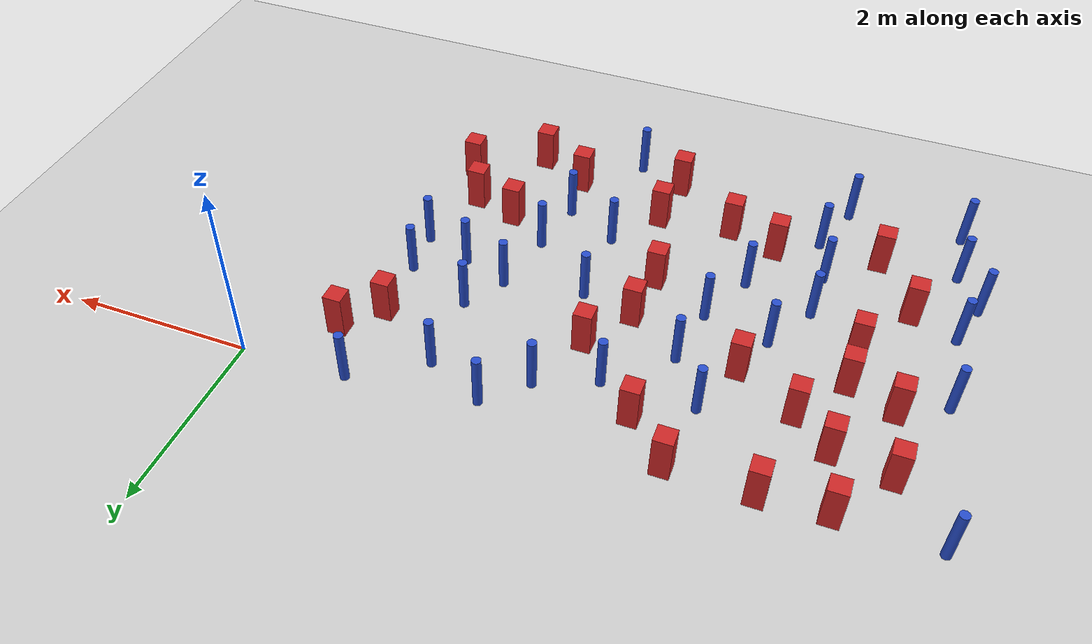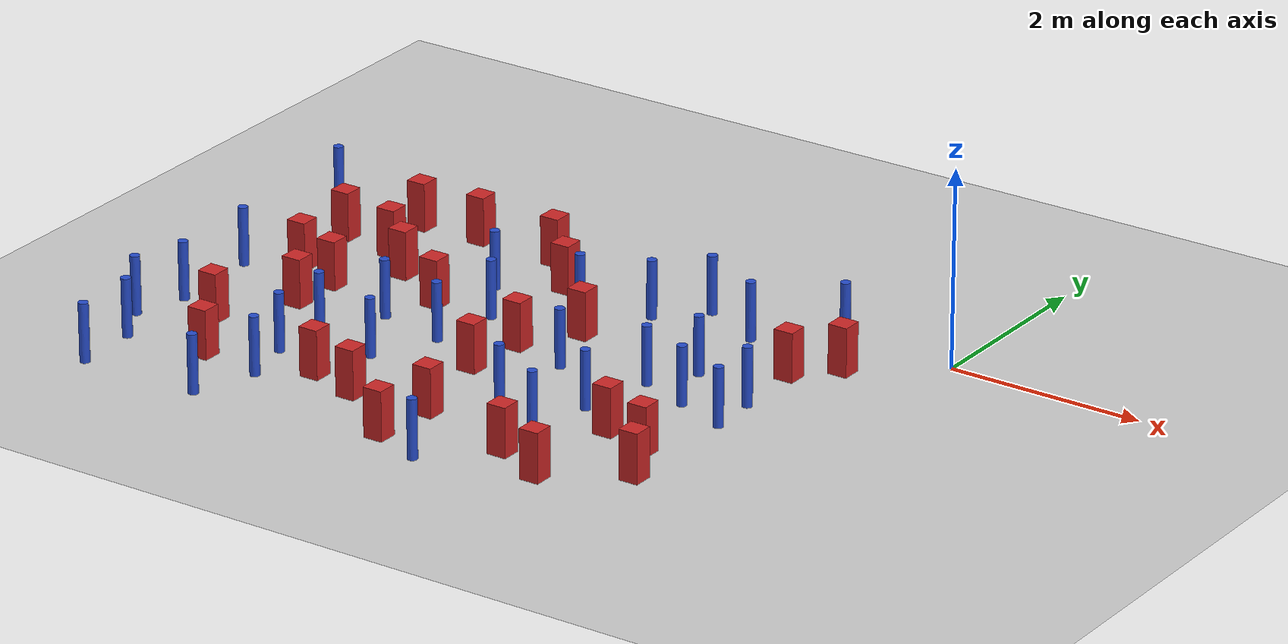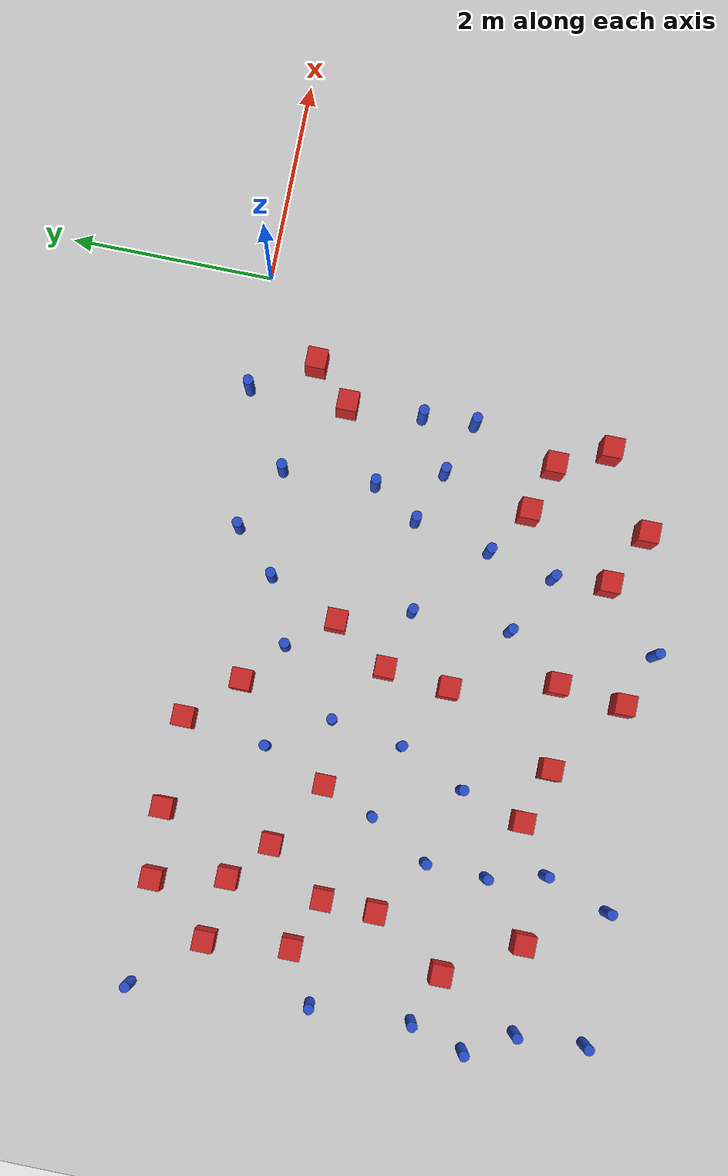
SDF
<sdf version="1.6">
 <world name="default">
  <model name="ground_plane">
   <static>1</static>
   <link name="link">
    <collision name="collision">
     <geometry><plane><normal>0 0 1</normal><size>100 100</size></plane></geometry>
     <surface><friction><ode><mu>100</mu><mu2>50</mu2></ode></friction></surface>
    </collision>
    <visual name="visual">
     <cast_shadows>0</cast_shadows>
     <geometry><plane><normal>0 0 1</normal><size>100 100</size></plane></geometry>
     <material>
      <ambient>1.0 1.0 1.0 1.0</ambient>
      <diffuse>0.8 0.8 0.8 1.0</diffuse>
      <specular>0.01 0.01 0.01 1.000000</specular>
     </material>
    </visual>
   </link>
  </model>
  <model name="pole_obstacle3">
   <static>true</static>
   <pose>-5.21165432251 -3.73537598972 2.88873142074e-08 -9.90536690245e-09 4.6021994898e-07 -1.20965994966e-07</pose>
   <link name="link">
    <pose>0 0 0.3 0 -0 0</pose>
    <inertial>
     <mass>1</mass>
     <inertia><ixx>0.145833</ixx><ixy>0</ixy><ixz>0</ixz><iyy>0.145833</iyy><iyz>0</iyz><izz>0.125</izz></inertia>
    </inertial>
    <collision name="collision">
     <geometry><cylinder><radius>0.05</radius><length>.6</length></cylinder></geometry>
    </collision>
    <visual name="visual">
     <geometry><cylinder><radius>0.05</radius><length>.6</length></cylinder></geometry>
     <material>
      <script><name>Gazebo/Blue</name><uri>file://media/materials/scripts/gazebo.material</uri></script>
     </material>
    </visual>
   </link>
  </model>
  <model name="square_post_obstacle5">
   <static>true</static>
   <pose>-6.42843077211 -0.685245272098 8.22691968438e-08 7.2212513382e-06 -7.54495500217e-07 2.29674213826e-05</pose>
   <link name="link">
    <pose>0 0 0.25 0 -0 0</pose>
    <inertial>
     <mass>100</mass>
     <inertia>
      <ixx>0.166667</ixx>
      <ixy>0</ixy>
      <ixz>0</ixz>
      <iyy>0.166667</iyy>
      <iyz>0</iyz>
      <izz>0.166667</izz>
     </inertia>
    </inertial>
    <collision name="collision"><geometry><box><size>.2 .2 .5</size></box></geometry></collision>
    <visual name="visual">
     <geometry><box><size>.2 .2 .5</size></box></geometry>
     <material>
      <script><name>Gazebo/Red</name><uri>file://media/materials/scripts/gazebo.material</uri></script>
     </material>
    </visual>
   </link>
  </model>
  <model name="square_post_obstacle11">
   <static>true</static>
   <pose>-4.78634820222 -1.50564330766 8.22691968438e-08 7.2212513382e-06 -7.54495500217e-07 2.29674213826e-05</pose>
   <link name="link">
    <pose>0 0 0.25 0 -0 0</pose>
    <inertial>
     <mass>100</mass>
     <inertia>
      <ixx>0.166667</ixx>
      <ixy>0</ixy>
      <ixz>0</ixz>
      <iyy>0.166667</iyy>
      <iyz>0</iyz>
      <izz>0.166667</izz>
     </inertia>
    </inertial>
    <collision name="collision"><geometry><box><size>.2 .2 .5</size></box></geometry></collision>
    <visual name="visual">
     <geometry><box><size>.2 .2 .5</size></box></geometry>
     <material>
      <script><name>Gazebo/Red</name><uri>file://media/materials/scripts/gazebo.material</uri></script>
     </material>
    </visual>
   </link>
  </model>
  <model name="pole_obstacle9">
   <static>true</static>
   <pose>-5.34426022218 -3.18087309578 2.88873142074e-08 -9.90536690245e-09 4.6021994898e-07 -1.20965994966e-07</pose>
   <link name="link">
    <pose>0 0 0.3 0 -0 0</pose>
    <inertial>
     <mass>1</mass>
     <inertia><ixx>0.145833</ixx><ixy>0</ixy><ixz>0</ixz><iyy>0.145833</iyy><iyz>0</iyz><izz>0.125</izz></inertia>
    </inertial>
    <collision name="collision">
     <geometry><cylinder><radius>0.05</radius><length>.6</length></cylinder></geometry>
    </collision>
    <visual name="visual">
     <geometry><cylinder><radius>0.05</radius><length>.6</length></cylinder></geometry>
     <material>
      <script><name>Gazebo/Blue</name><uri>file://media/materials/scripts/gazebo.material</uri></script>
     </material>
    </visual>
   </link>
  </model>
  <model name="square_post_obstacle21">
   <static>true</static>
   <pose>-3.65117823529 -2.49307799827 8.22691968438e-08 7.2212513382e-06 -7.54495500217e-07 2.29674213826e-05</pose>
   <link name="link">
    <pose>0 0 0.25 0 -0 0</pose>
    <inertial>
     <mass>100</mass>
     <inertia>
      <ixx>0.166667</ixx>
      <ixy>0</ixy>
      <ixz>0</ixz>
      <iyy>0.166667</iyy>
      <iyz>0</iyz>
      <izz>0.166667</izz>
     </inertia>
    </inertial>
    <collision name="collision"><geometry><box><size>.2 .2 .5</size></box></geometry></collision>
    <visual name="visual">
     <geometry><box><size>.2 .2 .5</size></box></geometry>
     <material>
      <script><name>Gazebo/Red</name><uri>file://media/materials/scripts/gazebo.material</uri></script>
     </material>
    </visual>
   </link>
  </model>
  <model name="pole_obstacle15">
   <static>true</static>
   <pose>-2.95555220369 -4.37389541297 2.88873142074e-08 -9.90536689859e-09 4.60219948989e-07 -1.20965994961e-07</pose>
   <link name="link">
    <pose>0 0 0.3 0 -0 0</pose>
    <inertial>
     <mass>1</mass>
     <inertia><ixx>0.145833</ixx><ixy>0</ixy><ixz>0</ixz><iyy>0.145833</iyy><iyz>0</iyz><izz>0.125</izz></inertia>
    </inertial>
    <collision name="collision">
     <geometry><cylinder><radius>0.05</radius><length>.6</length></cylinder></geometry>
    </collision>
    <visual name="visual">
     <geometry><cylinder><radius>0.05</radius><length>.6</length></cylinder></geometry>
     <material>
      <script><name>Gazebo/Blue</name><uri>file://media/materials/scripts/gazebo.material</uri></script>
     </material>
    </visual>
   </link>
  </model>
  <model name="pole_obstacle16">
   <static>true</static>
   <pose>-2.99650578361 -2.00878187522 2.88873142074e-08 -9.9053668955e-09 4.60219948996e-07 -1.20965994957e-07</pose>
   <link name="link">
    <pose>0 0 0.3 0 -0 0</pose>
    <inertial>
     <mass>1</mass>
     <inertia><ixx>0.145833</ixx><ixy>0</ixy><ixz>0</ixz><iyy>0.145833</iyy><iyz>0</iyz><izz>0.125</izz></inertia>
    </inertial>
    <collision name="collision">
     <geometry><cylinder><radius>0.05</radius><length>.6</length></cylinder></geometry>
    </collision>
    <visual name="visual">
     <geometry><cylinder><radius>0.05</radius><length>.6</length></cylinder></geometry>
     <material>
      <script><name>Gazebo/Blue</name><uri>file://media/materials/scripts/gazebo.material</uri></script>
     </material>
    </visual>
   </link>
  </model>
  <model name="pole_obstacle23">
   <static>true</static>
   <pose>-6.68507892236 -4.38531534704 2.88873142074e-08 -9.90536690842e-09 4.60219948965e-07 -1.20965994976e-07</pose>
   <link name="link">
    <pose>0 0 0.3 0 -0 0</pose>
    <inertial>
     <mass>1</mass>
     <inertia><ixx>0.145833</ixx><ixy>0</ixy><ixz>0</ixz><iyy>0.145833</iyy><iyz>0</iyz><izz>0.125</izz></inertia>
    </inertial>
    <collision name="collision">
     <geometry><cylinder><radius>0.05</radius><length>.6</length></cylinder></geometry>
    </collision>
    <visual name="visual">
     <geometry><cylinder><radius>0.05</radius><length>.6</length></cylinder></geometry>
     <material>
      <script><name>Gazebo/Blue</name><uri>file://media/materials/scripts/gazebo.material</uri></script>
     </material>
    </visual>
   </link>
  </model>
  <model name="square_post_obstacle32">
   <static>true</static>
   <pose>-3.22839016894 -1.31298967058 8.22691968438e-08 7.2212513382e-06 -7.54495500217e-07 2.29674213826e-05</pose>
   <link name="link">
    <pose>0 0 0.25 0 -0 0</pose>
    <inertial>
     <mass>100</mass>
     <inertia>
      <ixx>0.166667</ixx>
      <ixy>0</ixy>
      <ixz>0</ixz>
      <iyy>0.166667</iyy>
      <iyz>0</iyz>
      <izz>0.166667</izz>
     </inertia>
    </inertial>
    <collision name="collision"><geometry><box><size>.2 .2 .5</size></box></geometry></collision>
    <visual name="visual">
     <geometry><box><size>.2 .2 .5</size></box></geometry>
     <material>
      <script><name>Gazebo/Red</name><uri>file://media/materials/scripts/gazebo.material</uri></script>
     </material>
    </visual>
   </link>
  </model>
  <model name="square_post_obstacle34">
   <static>true</static>
   <pose>-4.4126497661 -0.0671262448965 8.22691968438e-08 7.2212513382e-06 -7.54495500217e-07 2.29674213826e-05</pose>
   <link name="link">
    <pose>0 0 0.25 0 -0 0</pose>
    <inertial>
     <mass>100</mass>
     <inertia>
      <ixx>0.166667</ixx>
      <ixy>0</ixy>
      <ixz>0</ixz>
      <iyy>0.166667</iyy>
      <iyz>0</iyz>
      <izz>0.166667</izz>
     </inertia>
    </inertial>
    <collision name="collision"><geometry><box><size>.2 .2 .5</size></box></geometry></collision>
    <visual name="visual">
     <geometry><box><size>.2 .2 .5</size></box></geometry>
     <material>
      <script><name>Gazebo/Red</name><uri>file://media/materials/scripts/gazebo.material</uri></script>
     </material>
    </visual>
   </link>
  </model>
  <model name="square_post_obstacle38">
   <static>true</static>
   <pose>-1.82525617502 -2.93094891674 8.22691968438e-08 7.2212513382e-06 -7.54495500217e-07 2.29674213826e-05</pose>
   <link name="link">
    <pose>0 0 0.25 0 -0 0</pose>
    <inertial>
     <mass>100</mass>
     <inertia>
      <ixx>0.166667</ixx>
      <ixy>0</ixy>
      <ixz>0</ixz>
      <iyy>0.166667</iyy>
      <iyz>0</iyz>
      <izz>0.166667</izz>
     </inertia>
    </inertial>
    <collision name="collision"><geometry><box><size>.2 .2 .5</size></box></geometry></collision>
    <visual name="visual">
     <geometry><box><size>.2 .2 .5</size></box></geometry>
     <material>
      <script><name>Gazebo/Red</name><uri>file://media/materials/scripts/gazebo.material</uri></script>
     </material>
    </visual>
   </link>
  </model>
  <model name="square_post_obstacle43">
   <static>true</static>
   <pose>-5.4273208895 -1.12287737611 8.22691968438e-08 7.2212513382e-06 -7.54495500217e-07 2.29674213826e-05</pose>
   <link name="link">
    <pose>0 0 0.25 0 -0 0</pose>
    <inertial>
     <mass>100</mass>
     <inertia>
      <ixx>0.166667</ixx>
      <ixy>0</ixy>
      <ixz>0</ixz>
      <iyy>0.166667</iyy>
      <iyz>0</iyz>
      <izz>0.166667</izz>
     </inertia>
    </inertial>
    <collision name="collision"><geometry><box><size>.2 .2 .5</size></box></geometry></collision>
    <visual name="visual">
     <geometry><box><size>.2 .2 .5</size></box></geometry>
     <material>
      <script><name>Gazebo/Red</name><uri>file://media/materials/scripts/gazebo.material</uri></script>
     </material>
    </visual>
   </link>
  </model>
  <model name="pole_obstacle47">
   <static>true</static>
   <pose>-4.53171149056 -0.882813047764 2.88873142074e-08 -9.90536689837e-09 4.60219948989e-07 -1.2096599496e-07</pose>
   <link name="link">
    <pose>0 0 0.3 0 -0 0</pose>
    <inertial>
     <mass>1</mass>
     <inertia><ixx>0.145833</ixx><ixy>0</ixy><ixz>0</ixz><iyy>0.145833</iyy><iyz>0</iyz><izz>0.125</izz></inertia>
    </inertial>
    <collision name="collision">
     <geometry><cylinder><radius>0.05</radius><length>.6</length></cylinder></geometry>
    </collision>
    <visual name="visual">
     <geometry><cylinder><radius>0.05</radius><length>.6</length></cylinder></geometry>
     <material>
      <script><name>Gazebo/Blue</name><uri>file://media/materials/scripts/gazebo.material</uri></script>
     </material>
    </visual>
   </link>
  </model>
  <model name="pole_obstacle53">
   <static>true</static>
   <pose>-1.07774630203 -2.25687735617 2.88873142074e-08 -9.90536689791e-09 4.6021994899e-07 -1.20965994959e-07</pose>
   <link name="link">
    <pose>0 0 0.3 0 -0 0</pose>
    <inertial>
     <mass>1</mass>
     <inertia><ixx>0.145833</ixx><ixy>0</ixy><ixz>0</ixz><iyy>0.145833</iyy><iyz>0</iyz><izz>0.125</izz></inertia>
    </inertial>
    <collision name="collision">
     <geometry><cylinder><radius>0.05</radius><length>.6</length></cylinder></geometry>
    </collision>
    <visual name="visual">
     <geometry><cylinder><radius>0.05</radius><length>.6</length></cylinder></geometry>
     <material>
      <script><name>Gazebo/Blue</name><uri>file://media/materials/scripts/gazebo.material</uri></script>
     </material>
    </visual>
   </link>
  </model>
  <model name="square_post_obstacle58">
   <static>true</static>
   <pose>-0.790281870922 -0.627762560851 8.22691968438e-08 7.2212513382e-06 -7.54495500217e-07 2.29674213826e-05</pose>
   <link name="link">
    <pose>0 0 0.25 0 -0 0</pose>
    <inertial>
     <mass>100</mass>
     <inertia>
      <ixx>0.166667</ixx>
      <ixy>0</ixy>
      <ixz>0</ixz>
      <iyy>0.166667</iyy>
      <iyz>0</iyz>
      <izz>0.166667</izz>
     </inertia>
    </inertial>
    <collision name="collision"><geometry><box><size>.2 .2 .5</size></box></geometry></collision>
    <visual name="visual">
     <geometry><box><size>.2 .2 .5</size></box></geometry>
     <material>
      <script><name>Gazebo/Red</name><uri>file://media/materials/scripts/gazebo.material</uri></script>
     </material>
    </visual>
   </link>
  </model>
  <model name="pole_obstacle58">
   <static>true</static>
   <pose>-1.88493797999 -0.509931481575 2.88873142074e-08 -9.90536689896e-09 4.60219948988e-07 -1.20965994962e-07</pose>
   <link name="link">
    <pose>0 0 0.3 0 -0 0</pose>
    <inertial>
     <mass>1</mass>
     <inertia><ixx>0.145833</ixx><ixy>0</ixy><ixz>0</ixz><iyy>0.145833</iyy><iyz>0</iyz><izz>0.125</izz></inertia>
    </inertial>
    <collision name="collision">
     <geometry><cylinder><radius>0.05</radius><length>.6</length></cylinder></geometry>
    </collision>
    <visual name="visual">
     <geometry><cylinder><radius>0.05</radius><length>.6</length></cylinder></geometry>
     <material>
      <script><name>Gazebo/Blue</name><uri>file://media/materials/scripts/gazebo.material</uri></script>
     </material>
    </visual>
   </link>
  </model>
  <model name="square_post_obstacle66">
   <static>true</static>
   <pose>-3.96130007721 -0.536530929148 8.22691968438e-08 7.2212513382e-06 -7.54495500217e-07 2.29674213826e-05</pose>
   <link name="link">
    <pose>0 0 0.25 0 -0 0</pose>
    <inertial>
     <mass>100</mass>
     <inertia>
      <ixx>0.166667</ixx>
      <ixy>0</ixy>
      <ixz>0</ixz>
      <iyy>0.166667</iyy>
      <iyz>0</iyz>
      <izz>0.166667</izz>
     </inertia>
    </inertial>
    <collision name="collision"><geometry><box><size>.2 .2 .5</size></box></geometry></collision>
    <visual name="visual">
     <geometry><box><size>.2 .2 .5</size></box></geometry>
     <material>
      <script><name>Gazebo/Red</name><uri>file://media/materials/scripts/gazebo.material</uri></script>
     </material>
    </visual>
   </link>
  </model>
  <model name="pole_obstacle66">
   <static>true</static>
   <pose>-3.55588544177 -0.874931331191 2.88873142074e-08 -9.90536689285e-09 4.60219949002e-07 -1.20965994953e-07</pose>
   <link name="link">
    <pose>0 0 0.3 0 -0 0</pose>
    <inertial>
     <mass>1</mass>
     <inertia><ixx>0.145833</ixx><ixy>0</ixy><ixz>0</ixz><iyy>0.145833</iyy><iyz>0</iyz><izz>0.125</izz></inertia>
    </inertial>
    <collision name="collision">
     <geometry><cylinder><radius>0.05</radius><length>.6</length></cylinder></geometry>
    </collision>
    <visual name="visual">
     <geometry><cylinder><radius>0.05</radius><length>.6</length></cylinder></geometry>
     <material>
      <script><name>Gazebo/Blue</name><uri>file://media/materials/scripts/gazebo.material</uri></script>
     </material>
    </visual>
   </link>
  </model>
  <model name="pole_obstacle68">
   <static>true</static>
   <pose>-6.79870248512 -2.74289346069 2.88873142074e-08 -9.90536690245e-09 4.6021994898e-07 -1.20965994966e-07</pose>
   <link name="link">
    <pose>0 0 0.3 0 -0 0</pose>
    <inertial>
     <mass>1</mass>
     <inertia><ixx>0.145833</ixx><ixy>0</ixy><ixz>0</ixz><iyy>0.145833</iyy><iyz>0</iyz><izz>0.125</izz></inertia>
    </inertial>
    <collision name="collision">
     <geometry><cylinder><radius>0.05</radius><length>.6</length></cylinder></geometry>
    </collision>
    <visual name="visual">
     <geometry><cylinder><radius>0.05</radius><length>.6</length></cylinder></geometry>
     <material>
      <script><name>Gazebo/Blue</name><uri>file://media/materials/scripts/gazebo.material</uri></script>
     </material>
    </visual>
   </link>
  </model>
  <model name="pole_obstacle70">
   <static>true</static>
   <pose>-2.12396361191 -1.87044255935 2.88873142074e-08 -9.90536689395e-09 4.60219949e-07 -1.20965994953e-07</pose>
   <link name="link">
    <pose>0 0 0.3 0 -0 0</pose>
    <inertial>
     <mass>1</mass>
     <inertia><ixx>0.145833</ixx><ixy>0</ixy><ixz>0</ixz><iyy>0.145833</iyy><iyz>0</iyz><izz>0.125</izz></inertia>
    </inertial>
    <collision name="collision">
     <geometry><cylinder><radius>0.05</radius><length>.6</length></cylinder></geometry>
    </collision>
    <visual name="visual">
     <geometry><cylinder><radius>0.05</radius><length>.6</length></cylinder></geometry>
     <material>
      <script><name>Gazebo/Blue</name><uri>file://media/materials/scripts/gazebo.material</uri></script>
     </material>
    </visual>
   </link>
  </model>
  <model name="pole_obstacle82">
   <static>true</static>
   <pose>-1.8521504614 -1.42133346013 2.88873142074e-08 -9.90536689672e-09 4.60219948993e-07 -1.20965994959e-07</pose>
   <link name="link">
    <pose>0 0 0.3 0 -0 0</pose>
    <inertial>
     <mass>1</mass>
     <inertia><ixx>0.145833</ixx><ixy>0</ixy><ixz>0</ixz><iyy>0.145833</iyy><iyz>0</iyz><izz>0.125</izz></inertia>
    </inertial>
    <collision name="collision">
     <geometry><cylinder><radius>0.05</radius><length>.6</length></cylinder></geometry>
    </collision>
    <visual name="visual">
     <geometry><cylinder><radius>0.05</radius><length>.6</length></cylinder></geometry>
     <material>
      <script><name>Gazebo/Blue</name><uri>file://media/materials/scripts/gazebo.material</uri></script>
     </material>
    </visual>
   </link>
  </model>
  <model name="pole_obstacle83">
   <static>true</static>
   <pose>-2.99797997882 -2.96969001641 2.88873142074e-08 -9.90536690232e-09 4.6021994898e-07 -1.20965994968e-07</pose>
   <link name="link">
    <pose>0 0 0.3 0 -0 0</pose>
    <inertial>
     <mass>1</mass>
     <inertia><ixx>0.145833</ixx><ixy>0</ixy><ixz>0</ixz><iyy>0.145833</iyy><iyz>0</iyz><izz>0.125</izz></inertia>
    </inertial>
    <collision name="collision">
     <geometry><cylinder><radius>0.05</radius><length>.6</length></cylinder></geometry>
    </collision>
    <visual name="visual">
     <geometry><cylinder><radius>0.05</radius><length>.6</length></cylinder></geometry>
     <material>
      <script><name>Gazebo/Blue</name><uri>file://media/materials/scripts/gazebo.material</uri></script>
     </material>
    </visual>
   </link>
  </model>
  <model name="pole_obstacle90">
   <static>true</static>
   <pose>-2.28220086673 -2.62781002759 2.88873142074e-08 -9.90536690232e-09 4.6021994898e-07 -1.20965994968e-07</pose>
   <link name="link">
    <pose>0 0 0.3 0 -0 0</pose>
    <inertial>
     <mass>1</mass>
     <inertia><ixx>0.145833</ixx><ixy>0</ixy><ixz>0</ixz><iyy>0.145833</iyy><iyz>0</iyz><izz>0.125</izz></inertia>
    </inertial>
    <collision name="collision">
     <geometry><cylinder><radius>0.05</radius><length>.6</length></cylinder></geometry>
    </collision>
    <visual name="visual">
     <geometry><cylinder><radius>0.05</radius><length>.6</length></cylinder></geometry>
     <material>
      <script><name>Gazebo/Blue</name><uri>file://media/materials/scripts/gazebo.material</uri></script>
     </material>
    </visual>
   </link>
  </model>
  <model name="square_post_obstacle83">
   <static>true</static>
   <pose>-5.87506662059 -3.63955259218 8.22691968438e-08 7.2212513382e-06 -7.54495500217e-07 2.29674213826e-05</pose>
   <link name="link">
    <pose>0 0 0.25 0 -0 0</pose>
    <inertial>
     <mass>100</mass>
     <inertia>
      <ixx>0.166667</ixx>
      <ixy>0</ixy>
      <ixz>0</ixz>
      <iyy>0.166667</iyy>
      <iyz>0</iyz>
      <izz>0.166667</izz>
     </inertia>
    </inertial>
    <collision name="collision"><geometry><box><size>.2 .2 .5</size></box></geometry></collision>
    <visual name="visual">
     <geometry><box><size>.2 .2 .5</size></box></geometry>
     <material>
      <script><name>Gazebo/Red</name><uri>file://media/materials/scripts/gazebo.material</uri></script>
     </material>
    </visual>
   </link>
  </model>
  <model name="square_post_obstacle84">
   <static>true</static>
   <pose>-5.81545423949 -0.783569078275 8.22691968438e-08 7.2212513382e-06 -7.54495500217e-07 2.29674213826e-05</pose>
   <link name="link">
    <pose>0 0 0.25 0 -0 0</pose>
    <inertial>
     <mass>100</mass>
     <inertia>
      <ixx>0.166667</ixx>
      <ixy>0</ixy>
      <ixz>0</ixz>
      <iyy>0.166667</iyy>
      <iyz>0</iyz>
      <izz>0.166667</izz>
     </inertia>
    </inertial>
    <collision name="collision"><geometry><box><size>.2 .2 .5</size></box></geometry></collision>
    <visual name="visual">
     <geometry><box><size>.2 .2 .5</size></box></geometry>
     <material>
      <script><name>Gazebo/Red</name><uri>file://media/materials/scripts/gazebo.material</uri></script>
     </material>
    </visual>
   </link>
  </model>
  <model name="square_post_obstacle87">
   <static>true</static>
   <pose>-3.48524625321 -4.15982354504 8.22691968438e-08 7.22125133819e-06 -7.54495500217e-07 2.29674213826e-05</pose>
   <link name="link">
    <pose>0 0 0.25 0 -0 0</pose>
    <inertial>
     <mass>100</mass>
     <inertia>
      <ixx>0.166667</ixx>
      <ixy>0</ixy>
      <ixz>0</ixz>
      <iyy>0.166667</iyy>
      <iyz>0</iyz>
      <izz>0.166667</izz>
     </inertia>
    </inertial>
    <collision name="collision"><geometry><box><size>.2 .2 .5</size></box></geometry></collision>
    <visual name="visual">
     <geometry><box><size>.2 .2 .5</size></box></geometry>
     <material>
      <script><name>Gazebo/Red</name><uri>file://media/materials/scripts/gazebo.material</uri></script>
     </material>
    </visual>
   </link>
  </model>
  <model name="pole_obstacle102">
   <static>true</static>
   <pose>-5.43389666149 -4.37150618119 2.88873142074e-08 -9.90536690842e-09 4.60219948965e-07 -1.20965994976e-07</pose>
   <link name="link">
    <pose>0 0 0.3 0 -0 0</pose>
    <inertial>
     <mass>1</mass>
     <inertia><ixx>0.145833</ixx><ixy>0</ixy><ixz>0</ixz><iyy>0.145833</iyy><iyz>0</iyz><izz>0.125</izz></inertia>
    </inertial>
    <collision name="collision">
     <geometry><cylinder><radius>0.05</radius><length>.6</length></cylinder></geometry>
    </collision>
    <visual name="visual">
     <geometry><cylinder><radius>0.05</radius><length>.6</length></cylinder></geometry>
     <material>
      <script><name>Gazebo/Blue</name><uri>file://media/materials/scripts/gazebo.material</uri></script>
     </material>
    </visual>
   </link>
  </model>
  <model name="pole_obstacle103">
   <static>true</static>
   <pose>-4.9907116375 -2.0095099689 2.88873142074e-08 -9.90536689749e-09 4.60219948991e-07 -1.20965994959e-07</pose>
   <link name="link">
    <pose>0 0 0.3 0 -0 0</pose>
    <inertial>
     <mass>1</mass>
     <inertia><ixx>0.145833</ixx><ixy>0</ixy><ixz>0</ixz><iyy>0.145833</iyy><iyz>0</iyz><izz>0.125</izz></inertia>
    </inertial>
    <collision name="collision">
     <geometry><cylinder><radius>0.05</radius><length>.6</length></cylinder></geometry>
    </collision>
    <visual name="visual">
     <geometry><cylinder><radius>0.05</radius><length>.6</length></cylinder></geometry>
     <material>
      <script><name>Gazebo/Blue</name><uri>file://media/materials/scripts/gazebo.material</uri></script>
     </material>
    </visual>
   </link>
  </model>
  <model name="square_post_obstacle93">
   <static>true</static>
   <pose>-1.08324441772 -3.59581311077 8.22691968438e-08 7.22125133819e-06 -7.54495500217e-07 2.29674213826e-05</pose>
   <link name="link">
    <pose>0 0 0.25 0 -0 0</pose>
    <inertial>
     <mass>100</mass>
     <inertia>
      <ixx>0.166667</ixx>
      <ixy>0</ixy>
      <ixz>0</ixz>
      <iyy>0.166667</iyy>
      <iyz>0</iyz>
      <izz>0.166667</izz>
     </inertia>
    </inertial>
    <collision name="collision"><geometry><box><size>.2 .2 .5</size></box></geometry></collision>
    <visual name="visual">
     <geometry><box><size>.2 .2 .5</size></box></geometry>
     <material>
      <script><name>Gazebo/Red</name><uri>file://media/materials/scripts/gazebo.material</uri></script>
     </material>
    </visual>
   </link>
  </model>
  <model name="square_post_obstacle98">
   <static>true</static>
   <pose>-1.33408778529 -3.08959690034 8.22691968438e-08 7.2212513382e-06 -7.54495500217e-07 2.29674213826e-05</pose>
   <link name="link">
    <pose>0 0 0.25 0 -0 0</pose>
    <inertial>
     <mass>100</mass>
     <inertia>
      <ixx>0.166667</ixx>
      <ixy>0</ixy>
      <ixz>0</ixz>
      <iyy>0.166667</iyy>
      <iyz>0</iyz>
      <izz>0.166667</izz>
     </inertia>
    </inertial>
    <collision name="collision"><geometry><box><size>.2 .2 .5</size></box></geometry></collision>
    <visual name="visual">
     <geometry><box><size>.2 .2 .5</size></box></geometry>
     <material>
      <script><name>Gazebo/Red</name><uri>file://media/materials/scripts/gazebo.material</uri></script>
     </material>
    </visual>
   </link>
  </model>
  <model name="pole_obstacle111">
   <static>true</static>
   <pose>-4.28325318355 -2.158822395 2.88873142074e-08 -9.90536690245e-09 4.6021994898e-07 -1.20965994966e-07</pose>
   <link name="link">
    <pose>0 0 0.3 0 -0 0</pose>
    <inertial>
     <mass>1</mass>
     <inertia><ixx>0.145833</ixx><ixy>0</ixy><ixz>0</ixz><iyy>0.145833</iyy><iyz>0</iyz><izz>0.125</izz></inertia>
    </inertial>
    <collision name="collision">
     <geometry><cylinder><radius>0.05</radius><length>.6</length></cylinder></geometry>
    </collision>
    <visual name="visual">
     <geometry><cylinder><radius>0.05</radius><length>.6</length></cylinder></geometry>
     <material>
      <script><name>Gazebo/Blue</name><uri>file://media/materials/scripts/gazebo.material</uri></script>
     </material>
    </visual>
   </link>
  </model>
  <model name="square_post_obstacle101">
   <static>true</static>
   <pose>-3.58245829457 -1.85669866242 8.22691968438e-08 7.2212513382e-06 -7.54495500217e-07 2.29674213826e-05</pose>
   <link name="link">
    <pose>0 0 0.25 0 -0 0</pose>
    <inertial>
     <mass>100</mass>
     <inertia>
      <ixx>0.166667</ixx>
      <ixy>0</ixy>
      <ixz>0</ixz>
      <iyy>0.166667</iyy>
      <iyz>0</iyz>
      <izz>0.166667</izz>
     </inertia>
    </inertial>
    <collision name="collision"><geometry><box><size>.2 .2 .5</size></box></geometry></collision>
    <visual name="visual">
     <geometry><box><size>.2 .2 .5</size></box></geometry>
     <material>
      <script><name>Gazebo/Red</name><uri>file://media/materials/scripts/gazebo.material</uri></script>
     </material>
    </visual>
   </link>
  </model>
  <model name="pole_obstacle118">
   <static>true</static>
   <pose>-1.15088046053 -0.0300588871464 2.88873142074e-08 -9.90536690065e-09 4.60219948984e-07 -1.20965994964e-07</pose>
   <link name="link">
    <pose>0 0 0.3 0 -0 0</pose>
    <inertial>
     <mass>1</mass>
     <inertia><ixx>0.145833</ixx><ixy>0</ixy><ixz>0</ixz><iyy>0.145833</iyy><iyz>0</iyz><izz>0.125</izz></inertia>
    </inertial>
    <collision name="collision">
     <geometry><cylinder><radius>0.05</radius><length>.6</length></cylinder></geometry>
    </collision>
    <visual name="visual">
     <geometry><cylinder><radius>0.05</radius><length>.6</length></cylinder></geometry>
     <material>
      <script><name>Gazebo/Blue</name><uri>file://media/materials/scripts/gazebo.material</uri></script>
     </material>
    </visual>
   </link>
  </model>
  <model name="pole_obstacle124">
   <static>true</static>
   <pose>-2.51716964573 -0.206762812445 2.88873142074e-08 -9.90536692243e-09 4.60219948932e-07 -1.20965994987e-07</pose>
   <link name="link">
    <pose>0 0 0.3 0 -0 0</pose>
    <inertial>
     <mass>1</mass>
     <inertia><ixx>0.145833</ixx><ixy>0</ixy><ixz>0</ixz><iyy>0.145833</iyy><iyz>0</iyz><izz>0.125</izz></inertia>
    </inertial>
    <collision name="collision">
     <geometry><cylinder><radius>0.05</radius><length>.6</length></cylinder></geometry>
    </collision>
    <visual name="visual">
     <geometry><cylinder><radius>0.05</radius><length>.6</length></cylinder></geometry>
     <material>
      <script><name>Gazebo/Blue</name><uri>file://media/materials/scripts/gazebo.material</uri></script>
     </material>
    </visual>
   </link>
  </model>
  <model name="pole_obstacle130">
   <static>true</static>
   <pose>-2.92537951835 -0.613485603242 2.88873142074e-08 -9.90536689285e-09 4.60219949002e-07 -1.20965994953e-07</pose>
   <link name="link">
    <pose>0 0 0.3 0 -0 0</pose>
    <inertial>
     <mass>1</mass>
     <inertia><ixx>0.145833</ixx><ixy>0</ixy><ixz>0</ixz><iyy>0.145833</iyy><iyz>0</iyz><izz>0.125</izz></inertia>
    </inertial>
    <collision name="collision">
     <geometry><cylinder><radius>0.05</radius><length>.6</length></cylinder></geometry>
    </collision>
    <visual name="visual">
     <geometry><cylinder><radius>0.05</radius><length>.6</length></cylinder></geometry>
     <material>
      <script><name>Gazebo/Blue</name><uri>file://media/materials/scripts/gazebo.material</uri></script>
     </material>
    </visual>
   </link>
  </model>
  <model name="square_post_obstacle116">
   <static>true</static>
   <pose>-2.36531859477 -3.81391766137 8.22691968438e-08 7.2212513382e-06 -7.54495500217e-07 2.29674213826e-05</pose>
   <link name="link">
    <pose>0 0 0.25 0 -0 0</pose>
    <inertial>
     <mass>100</mass>
     <inertia>
      <ixx>0.166667</ixx>
      <ixy>0</ixy>
      <ixz>0</ixz>
      <iyy>0.166667</iyy>
      <iyz>0</iyz>
      <izz>0.166667</izz>
     </inertia>
    </inertial>
    <collision name="collision"><geometry><box><size>.2 .2 .5</size></box></geometry></collision>
    <visual name="visual">
     <geometry><box><size>.2 .2 .5</size></box></geometry>
     <material>
      <script><name>Gazebo/Red</name><uri>file://media/materials/scripts/gazebo.material</uri></script>
     </material>
    </visual>
   </link>
  </model>
  <model name="square_post_obstacle123">
   <static>true</static>
   <pose>-4.22160495517 -3.59081940101 8.22691968438e-08 7.2212513382e-06 -7.54495500217e-07 2.29674213826e-05</pose>
   <link name="link">
    <pose>0 0 0.25 0 -0 0</pose>
    <inertial>
     <mass>100</mass>
     <inertia>
      <ixx>0.166667</ixx>
      <ixy>0</ixy>
      <ixz>0</ixz>
      <iyy>0.166667</iyy>
      <iyz>0</iyz>
      <izz>0.166667</izz>
     </inertia>
    </inertial>
    <collision name="collision"><geometry><box><size>.2 .2 .5</size></box></geometry></collision>
    <visual name="visual">
     <geometry><box><size>.2 .2 .5</size></box></geometry>
     <material>
      <script><name>Gazebo/Red</name><uri>file://media/materials/scripts/gazebo.material</uri></script>
     </material>
    </visual>
   </link>
  </model>
  <model name="square_post_obstacle125">
   <static>true</static>
   <pose>-5.83830041156 -1.69803388322 8.22691968438e-08 7.2212513382e-06 -7.54495500217e-07 2.29674213826e-05</pose>
   <link name="link">
    <pose>0 0 0.25 0 -0 0</pose>
    <inertial>
     <mass>100</mass>
     <inertia>
      <ixx>0.166667</ixx>
      <ixy>0</ixy>
      <ixz>0</ixz>
      <iyy>0.166667</iyy>
      <iyz>0</iyz>
      <izz>0.166667</izz>
     </inertia>
    </inertial>
    <collision name="collision"><geometry><box><size>.2 .2 .5</size></box></geometry></collision>
    <visual name="visual">
     <geometry><box><size>.2 .2 .5</size></box></geometry>
     <material>
      <script><name>Gazebo/Red</name><uri>file://media/materials/scripts/gazebo.material</uri></script>
     </material>
    </visual>
   </link>
  </model>
  <model name="square_post_obstacle128">
   <static>true</static>
   <pose>-1.13772231819 -1.00490888528 8.22691968438e-08 7.2212513382e-06 -7.54495500217e-07 2.29674213826e-05</pose>
   <link name="link">
    <pose>0 0 0.25 0 -0 0</pose>
    <inertial>
     <mass>100</mass>
     <inertia>
      <ixx>0.166667</ixx>
      <ixy>0</ixy>
      <ixz>0</ixz>
      <iyy>0.166667</iyy>
      <iyz>0</iyz>
      <izz>0.166667</izz>
     </inertia>
    </inertial>
    <collision name="collision"><geometry><box><size>.2 .2 .5</size></box></geometry></collision>
    <visual name="visual">
     <geometry><box><size>.2 .2 .5</size></box></geometry>
     <material>
      <script><name>Gazebo/Red</name><uri>file://media/materials/scripts/gazebo.material</uri></script>
     </material>
    </visual>
   </link>
  </model>
  <model name="square_post_obstacle134">
   <static>true</static>
   <pose>-5.85798005993 -2.21623467699 8.22691968438e-08 7.2212513382e-06 -7.54495500217e-07 2.29674213826e-05</pose>
   <link name="link">
    <pose>0 0 0.25 0 -0 0</pose>
    <inertial>
     <mass>100</mass>
     <inertia>
      <ixx>0.166667</ixx>
      <ixy>0</ixy>
      <ixz>0</ixz>
      <iyy>0.166667</iyy>
      <iyz>0</iyz>
      <izz>0.166667</izz>
     </inertia>
    </inertial>
    <collision name="collision"><geometry><box><size>.2 .2 .5</size></box></geometry></collision>
    <visual name="visual">
     <geometry><box><size>.2 .2 .5</size></box></geometry>
     <material>
      <script><name>Gazebo/Red</name><uri>file://media/materials/scripts/gazebo.material</uri></script>
     </material>
    </visual>
   </link>
  </model>
  <model name="pole_obstacle148">
   <static>true</static>
   <pose>-1.6090675259 -2.05800947953 2.88873142074e-08 -9.90536689791e-09 4.6021994899e-07 -1.20965994959e-07</pose>
   <link name="link">
    <pose>0 0 0.3 0 -0 0</pose>
    <inertial>
     <mass>1</mass>
     <inertia><ixx>0.145833</ixx><ixy>0</ixy><ixz>0</ixz><iyy>0.145833</iyy><iyz>0</iyz><izz>0.125</izz></inertia>
    </inertial>
    <collision name="collision">
     <geometry><cylinder><radius>0.05</radius><length>.6</length></cylinder></geometry>
    </collision>
    <visual name="visual">
     <geometry><cylinder><radius>0.05</radius><length>.6</length></cylinder></geometry>
     <material>
      <script><name>Gazebo/Blue</name><uri>file://media/materials/scripts/gazebo.material</uri></script>
     </material>
    </visual>
   </link>
  </model>
  <model name="square_post_obstacle138">
   <static>true</static>
   <pose>-5.96223340523 -0.0844264898764 8.22691968438e-08 7.2212513382e-06 -7.54495500217e-07 2.29674213826e-05</pose>
   <link name="link">
    <pose>0 0 0.25 0 -0 0</pose>
    <inertial>
     <mass>100</mass>
     <inertia>
      <ixx>0.166667</ixx>
      <ixy>0</ixy>
      <ixz>0</ixz>
      <iyy>0.166667</iyy>
      <iyz>0</iyz>
      <izz>0.166667</izz>
     </inertia>
    </inertial>
    <collision name="collision"><geometry><box><size>.2 .2 .5</size></box></geometry></collision>
    <visual name="visual">
     <geometry><box><size>.2 .2 .5</size></box></geometry>
     <material>
      <script><name>Gazebo/Red</name><uri>file://media/materials/scripts/gazebo.material</uri></script>
     </material>
    </visual>
   </link>
  </model>
  <model name="pole_obstacle155">
   <static>true</static>
   <pose>-1.10489896795 -1.74302266878 2.88873142074e-08 -9.90536689672e-09 4.60219948993e-07 -1.20965994959e-07</pose>
   <link name="link">
    <pose>0 0 0.3 0 -0 0</pose>
    <inertial>
     <mass>1</mass>
     <inertia><ixx>0.145833</ixx><ixy>0</ixy><ixz>0</ixz><iyy>0.145833</iyy><iyz>0</iyz><izz>0.125</izz></inertia>
    </inertial>
    <collision name="collision">
     <geometry><cylinder><radius>0.05</radius><length>.6</length></cylinder></geometry>
    </collision>
    <visual name="visual">
     <geometry><cylinder><radius>0.05</radius><length>.6</length></cylinder></geometry>
     <material>
      <script><name>Gazebo/Blue</name><uri>file://media/materials/scripts/gazebo.material</uri></script>
     </material>
    </visual>
   </link>
  </model>
  <model name="pole_obstacle159">
   <static>true</static>
   <pose>-5.32067736061 -2.59194282408 2.88873142074e-08 -9.90536690245e-09 4.6021994898e-07 -1.20965994966e-07</pose>
   <link name="link">
    <pose>0 0 0.3 0 -0 0</pose>
    <inertial>
     <mass>1</mass>
     <inertia><ixx>0.145833</ixx><ixy>0</ixy><ixz>0</ixz><iyy>0.145833</iyy><iyz>0</iyz><izz>0.125</izz></inertia>
    </inertial>
    <collision name="collision">
     <geometry><cylinder><radius>0.05</radius><length>.6</length></cylinder></geometry>
    </collision>
    <visual name="visual">
     <geometry><cylinder><radius>0.05</radius><length>.6</length></cylinder></geometry>
     <material>
      <script><name>Gazebo/Blue</name><uri>file://media/materials/scripts/gazebo.material</uri></script>
     </material>
    </visual>
   </link>
  </model>
  <model name="square_post_obstacle155">
   <static>true</static>
   <pose>-6.30073307435 -2.93003635551 8.22691968438e-08 7.2212513382e-06 -7.54495500217e-07 2.29674213826e-05</pose>
   <link name="link">
    <pose>0 0 0.25 0 -0 0</pose>
    <inertial>
     <mass>100</mass>
     <inertia>
      <ixx>0.166667</ixx>
      <ixy>0</ixy>
      <ixz>0</ixz>
      <iyy>0.166667</iyy>
      <iyz>0</iyz>
      <izz>0.166667</izz>
     </inertia>
    </inertial>
    <collision name="collision"><geometry><box><size>.2 .2 .5</size></box></geometry></collision>
    <visual name="visual">
     <geometry><box><size>.2 .2 .5</size></box></geometry>
     <material>
      <script><name>Gazebo/Red</name><uri>file://media/materials/scripts/gazebo.material</uri></script>
     </material>
    </visual>
   </link>
  </model>
  <model name="pole_obstacle167">
   <static>true</static>
   <pose>-6.82977548748 -1.77447464308 2.88873142074e-08 -9.90536689445e-09 4.60219948999e-07 -1.20965994956e-07</pose>
   <link name="link">
    <pose>0 0 0.3 0 -0 0</pose>
    <inertial>
     <mass>1</mass>
     <inertia><ixx>0.145833</ixx><ixy>0</ixy><ixz>0</ixz><iyy>0.145833</iyy><iyz>0</iyz><izz>0.125</izz></inertia>
    </inertial>
    <collision name="collision">
     <geometry><cylinder><radius>0.05</radius><length>.6</length></cylinder></geometry>
    </collision>
    <visual name="visual">
     <geometry><cylinder><radius>0.05</radius><length>.6</length></cylinder></geometry>
     <material>
      <script><name>Gazebo/Blue</name><uri>file://media/materials/scripts/gazebo.material</uri></script>
     </material>
    </visual>
   </link>
  </model>
  <model name="square_post_obstacle167">
   <static>true</static>
   <pose>-4.75840801125 -3.42153994512 8.22691968438e-08 7.2212513382e-06 -7.54495500217e-07 2.29674213826e-05</pose>
   <link name="link">
    <pose>0 0 0.25 0 -0 0</pose>
    <inertial>
     <mass>100</mass>
     <inertia>
      <ixx>0.166667</ixx>
      <ixy>0</ixy>
      <ixz>0</ixz>
      <iyy>0.166667</iyy>
      <iyz>0</iyz>
      <izz>0.166667</izz>
     </inertia>
    </inertial>
    <collision name="collision"><geometry><box><size>.2 .2 .5</size></box></geometry></collision>
    <visual name="visual">
     <geometry><box><size>.2 .2 .5</size></box></geometry>
     <material>
      <script><name>Gazebo/Red</name><uri>file://media/materials/scripts/gazebo.material</uri></script>
     </material>
    </visual>
   </link>
  </model>
  <model name="square_post_obstacle170">
   <static>true</static>
   <pose>-1.82027375751 -4.0840799858 8.22691968438e-08 7.2212513382e-06 -7.54495500217e-07 2.29674213826e-05</pose>
   <link name="link">
    <pose>0 0 0.25 0 -0 0</pose>
    <inertial>
     <mass>100</mass>
     <inertia>
      <ixx>0.166667</ixx>
      <ixy>0</ixy>
      <ixz>0</ixz>
      <iyy>0.166667</iyy>
      <iyz>0</iyz>
      <izz>0.166667</izz>
     </inertia>
    </inertial>
    <collision name="collision"><geometry><box><size>.2 .2 .5</size></box></geometry></collision>
    <visual name="visual">
     <geometry><box><size>.2 .2 .5</size></box></geometry>
     <material>
      <script><name>Gazebo/Red</name><uri>file://media/materials/scripts/gazebo.material</uri></script>
     </material>
    </visual>
   </link>
  </model>
  <model name="square_post_obstacle181">
   <static>true</static>
   <pose>-5.29116178715 -0.0474635183726 8.22691968438e-08 7.2212513382e-06 -7.54495500217e-07 2.29674213826e-05</pose>
   <link name="link">
    <pose>0 0 0.25 0 -0 0</pose>
    <inertial>
     <mass>100</mass>
     <inertia>
      <ixx>0.166667</ixx>
      <ixy>0</ixy>
      <ixz>0</ixz>
      <iyy>0.166667</iyy>
      <iyz>0</iyz>
      <izz>0.166667</izz>
     </inertia>
    </inertial>
    <collision name="collision"><geometry><box><size>.2 .2 .5</size></box></geometry></collision>
    <visual name="visual">
     <geometry><box><size>.2 .2 .5</size></box></geometry>
     <material>
      <script><name>Gazebo/Red</name><uri>file://media/materials/scripts/gazebo.material</uri></script>
     </material>
    </visual>
   </link>
  </model>
  <model name="pole_obstacle189">
   <static>true</static>
   <pose>-6.71151486497 -3.71810344453 2.88873142074e-08 -9.90536690245e-09 4.6021994898e-07 -1.20965994966e-07</pose>
   <link name="link">
    <pose>0 0 0.3 0 -0 0</pose>
    <inertial>
     <mass>1</mass>
     <inertia><ixx>0.145833</ixx><ixy>0</ixy><ixz>0</ixz><iyy>0.145833</iyy><iyz>0</iyz><izz>0.125</izz></inertia>
    </inertial>
    <collision name="collision">
     <geometry><cylinder><radius>0.05</radius><length>.6</length></cylinder></geometry>
    </collision>
    <visual name="visual">
     <geometry><cylinder><radius>0.05</radius><length>.6</length></cylinder></geometry>
     <material>
      <script><name>Gazebo/Blue</name><uri>file://media/materials/scripts/gazebo.material</uri></script>
     </material>
    </visual>
   </link>
  </model>
  <model name="pole_obstacle190">
   <static>true</static>
   <pose>-6.96871958064 -0.0665030303829 2.88873142074e-08 -9.90536689153e-09 4.60219949006e-07 -1.20965994951e-07</pose>
   <link name="link">
    <pose>0 0 0.3 0 -0 0</pose>
    <inertial>
     <mass>1</mass>
     <inertia><ixx>0.145833</ixx><ixy>0</ixy><ixz>0</ixz><iyy>0.145833</iyy><iyz>0</iyz><izz>0.125</izz></inertia>
    </inertial>
    <collision name="collision">
     <geometry><cylinder><radius>0.05</radius><length>.6</length></cylinder></geometry>
    </collision>
    <visual name="visual">
     <geometry><cylinder><radius>0.05</radius><length>.6</length></cylinder></geometry>
     <material>
      <script><name>Gazebo/Blue</name><uri>file://media/materials/scripts/gazebo.material</uri></script>
     </material>
    </visual>
   </link>
  </model>
  <model name="pole_obstacle196">
   <static>true</static>
   <pose>-2.41484251266 -3.27746027479 2.88873142074e-08 -9.90536690232e-09 4.6021994898e-07 -1.20965994968e-07</pose>
   <link name="link">
    <pose>0 0 0.3 0 -0 0</pose>
    <inertial>
     <mass>1</mass>
     <inertia><ixx>0.145833</ixx><ixy>0</ixy><ixz>0</ixz><iyy>0.145833</iyy><iyz>0</iyz><izz>0.125</izz></inertia>
    </inertial>
    <collision name="collision">
     <geometry><cylinder><radius>0.05</radius><length>.6</length></cylinder></geometry>
    </collision>
    <visual name="visual">
     <geometry><cylinder><radius>0.05</radius><length>.6</length></cylinder></geometry>
     <material>
      <script><name>Gazebo/Blue</name><uri>file://media/materials/scripts/gazebo.material</uri></script>
     </material>
    </visual>
   </link>
  </model>
  <model name="pole_obstacle209">
   <static>true</static>
   <pose>-6.96282470119 -3.26384829785 2.88873142074e-08 -9.90536690245e-09 4.6021994898e-07 -1.20965994966e-07</pose>
   <link name="link">
    <pose>0 0 0.3 0 -0 0</pose>
    <inertial>
     <mass>1</mass>
     <inertia><ixx>0.145833</ixx><ixy>0</ixy><ixz>0</ixz><iyy>0.145833</iyy><iyz>0</iyz><izz>0.125</izz></inertia>
    </inertial>
    <collision name="collision">
     <geometry><cylinder><radius>0.05</radius><length>.6</length></cylinder></geometry>
    </collision>
    <visual name="visual">
     <geometry><cylinder><radius>0.05</radius><length>.6</length></cylinder></geometry>
     <material>
      <script><name>Gazebo/Blue</name><uri>file://media/materials/scripts/gazebo.material</uri></script>
     </material>
    </visual>
   </link>
  </model>
  <model name="pole_obstacle213">
   <static>true</static>
   <pose>-4.16633254264 -1.4564203426 2.88873142074e-08 -9.90536689445e-09 4.60219948999e-07 -1.20965994956e-07</pose>
   <link name="link">
    <pose>0 0 0.3 0 -0 0</pose>
    <inertial>
     <mass>1</mass>
     <inertia><ixx>0.145833</ixx><ixy>0</ixy><ixz>0</ixz><iyy>0.145833</iyy><iyz>0</iyz><izz>0.125</izz></inertia>
    </inertial>
    <collision name="collision">
     <geometry><cylinder><radius>0.05</radius><length>.6</length></cylinder></geometry>
    </collision>
    <visual name="visual">
     <geometry><cylinder><radius>0.05</radius><length>.6</length></cylinder></geometry>
     <material>
      <script><name>Gazebo/Blue</name><uri>file://media/materials/scripts/gazebo.material</uri></script>
     </material>
    </visual>
   </link>
  </model>
  <model name="pole_obstacle217">
   <static>true</static>
   <pose>-4.57756785691 -2.80168445062 2.88873142074e-08 -9.90536690245e-09 4.6021994898e-07 -1.20965994966e-07</pose>
   <link name="link">
    <pose>0 0 0.3 0 -0 0</pose>
    <inertial>
     <mass>1</mass>
     <inertia><ixx>0.145833</ixx><ixy>0</ixy><ixz>0</ixz><iyy>0.145833</iyy><iyz>0</iyz><izz>0.125</izz></inertia>
    </inertial>
    <collision name="collision">
     <geometry><cylinder><radius>0.05</radius><length>.6</length></cylinder></geometry>
    </collision>
    <visual name="visual">
     <geometry><cylinder><radius>0.05</radius><length>.6</length></cylinder></geometry>
     <material>
      <script><name>Gazebo/Blue</name><uri>file://media/materials/scripts/gazebo.material</uri></script>
     </material>
    </visual>
   </link>
  </model>
  <model name="square_post_obstacle204">
   <static>true</static>
   <pose>-6.33810595284 -1.50104180288 8.22691968438e-08 7.2212513382e-06 -7.54495500217e-07 2.29674213826e-05</pose>
   <link name="link">
    <pose>0 0 0.25 0 -0 0</pose>
    <inertial>
     <mass>100</mass>
     <inertia>
      <ixx>0.166667</ixx>
      <ixy>0</ixy>
      <ixz>0</ixz>
      <iyy>0.166667</iyy>
      <iyz>0</iyz>
      <izz>0.166667</izz>
     </inertia>
    </inertial>
    <collision name="collision"><geometry><box><size>.2 .2 .5</size></box></geometry></collision>
    <visual name="visual">
     <geometry><box><size>.2 .2 .5</size></box></geometry>
     <material>
      <script><name>Gazebo/Red</name><uri>file://media/materials/scripts/gazebo.material</uri></script>
     </material>
    </visual>
   </link>
  </model>
  <model name="square_post_obstacle206">
   <static>true</static>
   <pose>-3.41014890695 -3.50758702913 8.22691968438e-08 7.2212513382e-06 -7.54495500217e-07 2.29674213826e-05</pose>
   <link name="link">
    <pose>0 0 0.25 0 -0 0</pose>
    <inertial>
     <mass>100</mass>
     <inertia>
      <ixx>0.166667</ixx>
      <ixy>0</ixy>
      <ixz>0</ixz>
      <iyy>0.166667</iyy>
      <iyz>0</iyz>
      <izz>0.166667</izz>
     </inertia>
    </inertial>
    <collision name="collision"><geometry><box><size>.2 .2 .5</size></box></geometry></collision>
    <visual name="visual">
     <geometry><box><size>.2 .2 .5</size></box></geometry>
     <material>
      <script><name>Gazebo/Red</name><uri>file://media/materials/scripts/gazebo.material</uri></script>
     </material>
    </visual>
   </link>
  </model>
 </world>
</sdf>
